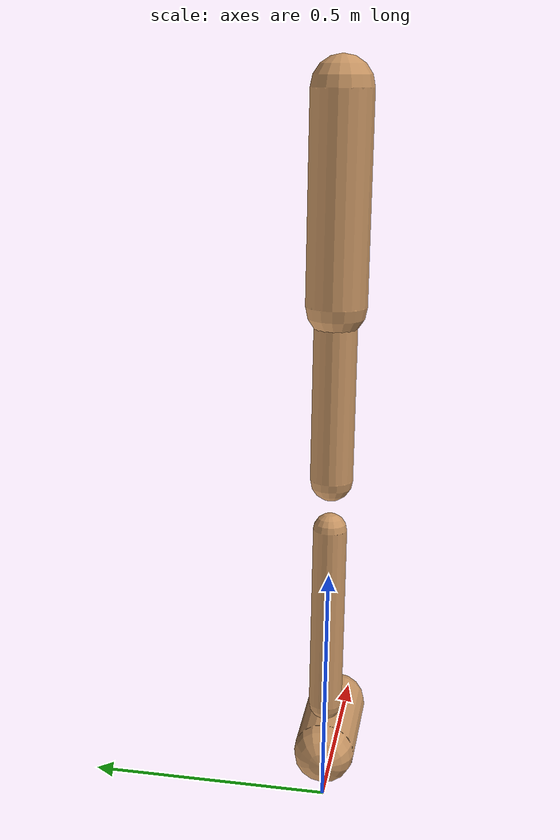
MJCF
<mujoco model="walker2d">
  <compiler angle="degree" coordinate="global" inertiafromgeom="true" />
  <default>
    <joint armature="0.01" damping=".1" limited="true" />
    <geom conaffinity="0" condim="3" contype="1" density="1000" friction="0.8 .1 .1" rgba="0.8 0.6 .4 1" />
  </default>
  <option integrator="RK4" timestep="0.002" />
  <worldbody>

    <body name="torso" pos="0 0 -0.22083540807060006">
      <joint armature="0" axis="1 0 0" damping="0" limited="false" name="ignorex" pos="0 0 0" stiffness="0" type="slide" />
      <joint armature="0" axis="0 0 1" damping="0" limited="false" name="ignorez" pos="0 0 0" ref="1.25" stiffness="0" type="slide" />
      <joint armature="0" axis="0 1 0" damping="0" limited="false" name="ignorey" pos="0 0 0" stiffness="0" type="hinge" />
      <geom fromto="0 0 1.45 0 0 1.05" name="torso_geom" size="0.05940830575337759" type="capsule" />
      <body name="thigh">
        <joint axis="0 -1 0" name="thigh_joint" pos="0 0 1.05" range="-150 0" type="hinge" />
        <geom fromto="0.0 0.0 1.05 0.0 0.0 0.704606245928179" name="thigh_geom" size="0.04226412014757862" type="capsule" />
        <body name="leg" pos="0.0 0.0 0.10460624592817902">
          <joint axis="0 -1 0" name="leg_joint" pos="0 0 0.6" range="-150 0" type="hinge" />
          <geom fromto="0.0 0.0 0.6 0.0 0.0 0.21622916214242108" name="leg_geom" size="0.03381129611806289" type="capsule" />
          <body name="foot" pos="0.0 0.0 0.11622916214242107">
            <joint axis="0 -1 0" name="foot_joint" pos="0 0 0.1" range="-45 45" type="hinge" />
            <geom fromto="-0.0 0.0 0.1 0.22793528178269648 0.0 0.1" name="foot_geom" size="0.06258422389925826" type="capsule" />
          </body>
        </body>
      </body>

      <body name="thigh_left">
        <joint axis="0 -1 0" name="thigh_left_joint" pos="0 0 1.05" range="-150 0" type="hinge" />
        <geom fromto="0.0 0.0 1.05 0.0 0.0 0.704606245928179" name="thigh_left_geom" rgba=".7 .3 .6 1" size="0.04226412014757862" type="capsule" />
        <body name="leg_left" pos="0.0 0.0 0.10460624592817902">
          <joint axis="0 -1 0" name="leg_left_joint" pos="0 0 0.6" range="-150 0" type="hinge" />
          <geom fromto="0.0 0.0 0.6 0.0 0.0 0.21622916214242108" name="leg_left_geom" rgba=".7 .3 .6 1" size="0.03381129611806289" type="capsule" />
          <body name="foot_left" pos="0.0 0.0 0.11622916214242107">
            <joint axis="0 -1 0" name="foot_left_joint" pos="0 0 0.1" range="-45 45" type="hinge" />
            <geom fromto="-0.0 0.0 0.1 0.22793528178269648 0.0 0.1" name="foot_left_geom" rgba=".7 .3 .6 1" size="0.06258422389925826" type="capsule" />
          </body>
        </body>
      </body>
    </body>
  </worldbody>
  <actuator>

    <motor ctrllimited="true" ctrlrange="-1.0 1.0" gear="100" joint="thigh_joint" />
    <motor ctrllimited="true" ctrlrange="-1.0 1.0" gear="100" joint="leg_joint" />
    <motor ctrllimited="true" ctrlrange="-1.0 1.0" gear="100" joint="foot_joint" />
    <motor ctrllimited="true" ctrlrange="-1.0 1.0" gear="100" joint="thigh_left_joint" />
    <motor ctrllimited="true" ctrlrange="-1.0 1.0" gear="100" joint="leg_left_joint" />
    <motor ctrllimited="true" ctrlrange="-1.0 1.0" gear="100" joint="foot_left_joint" />

  </actuator>
</mujoco>
